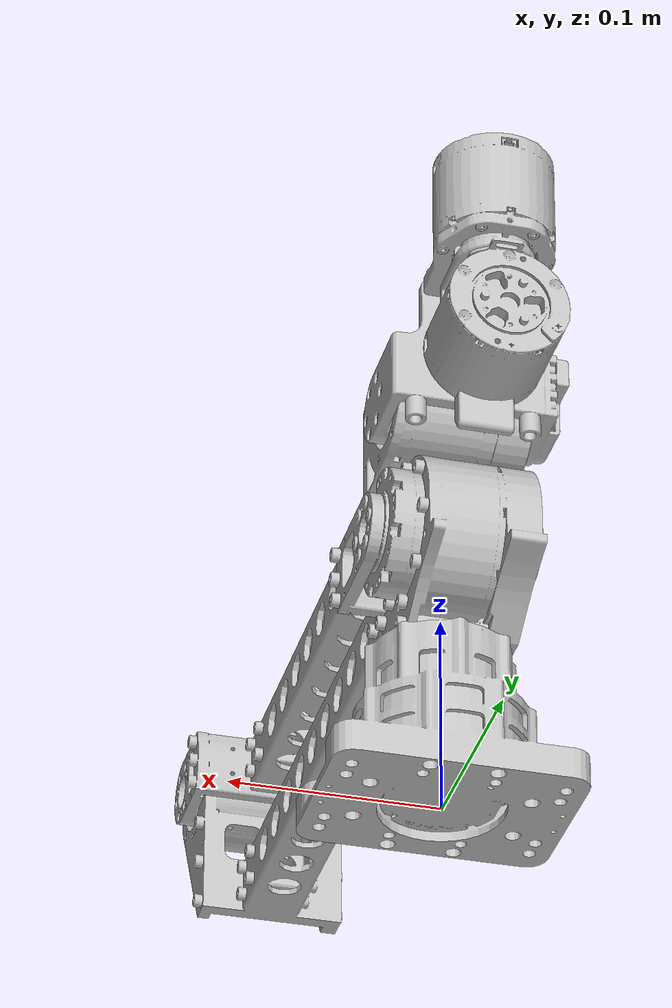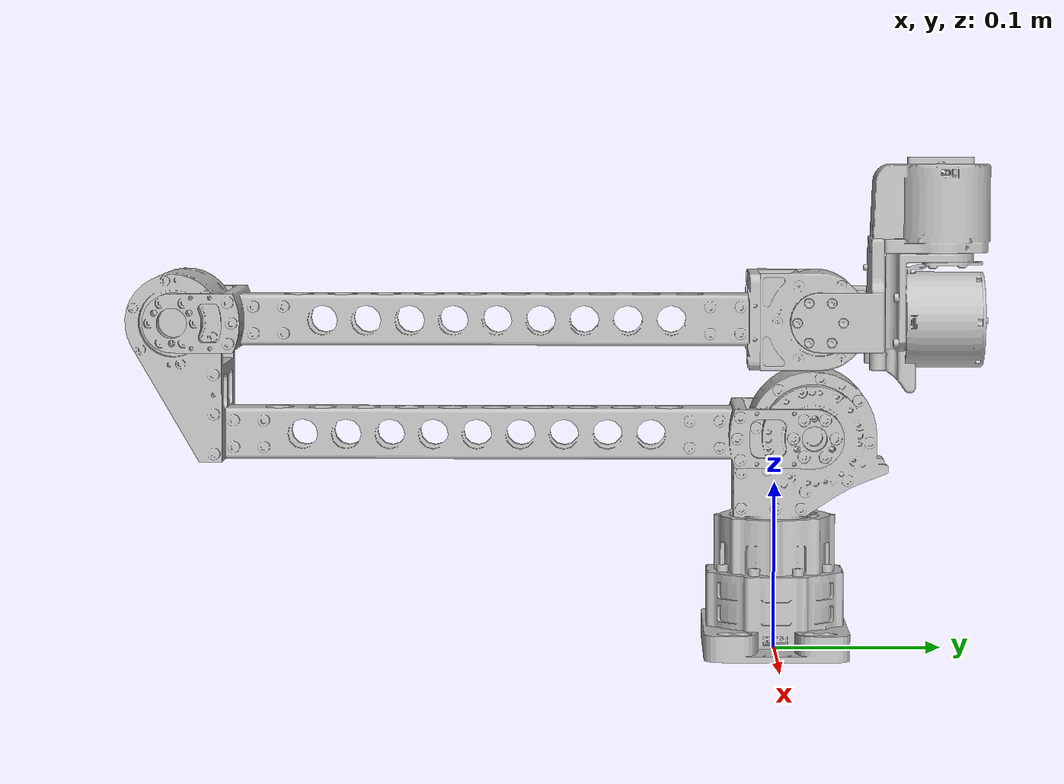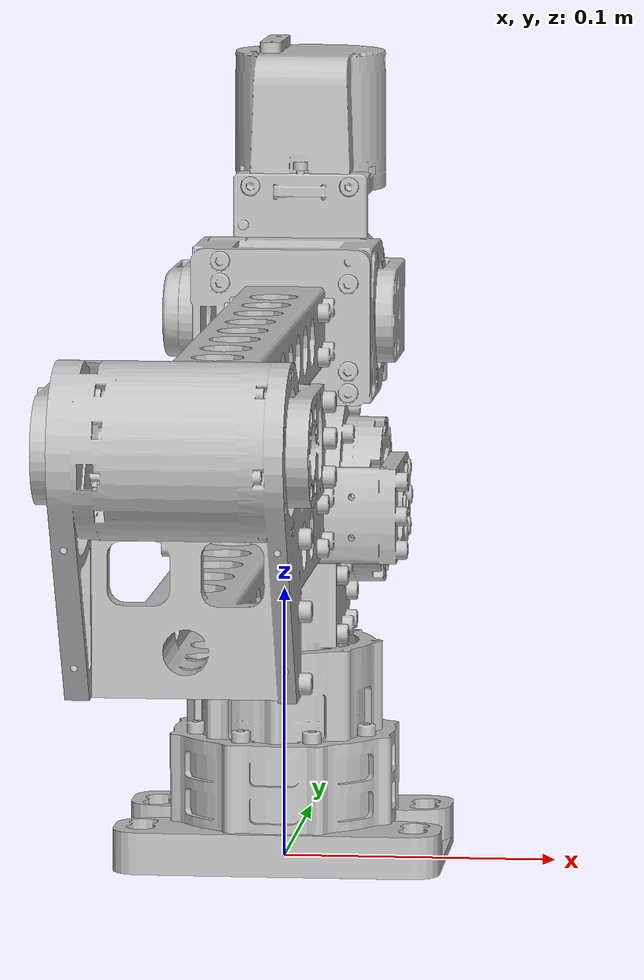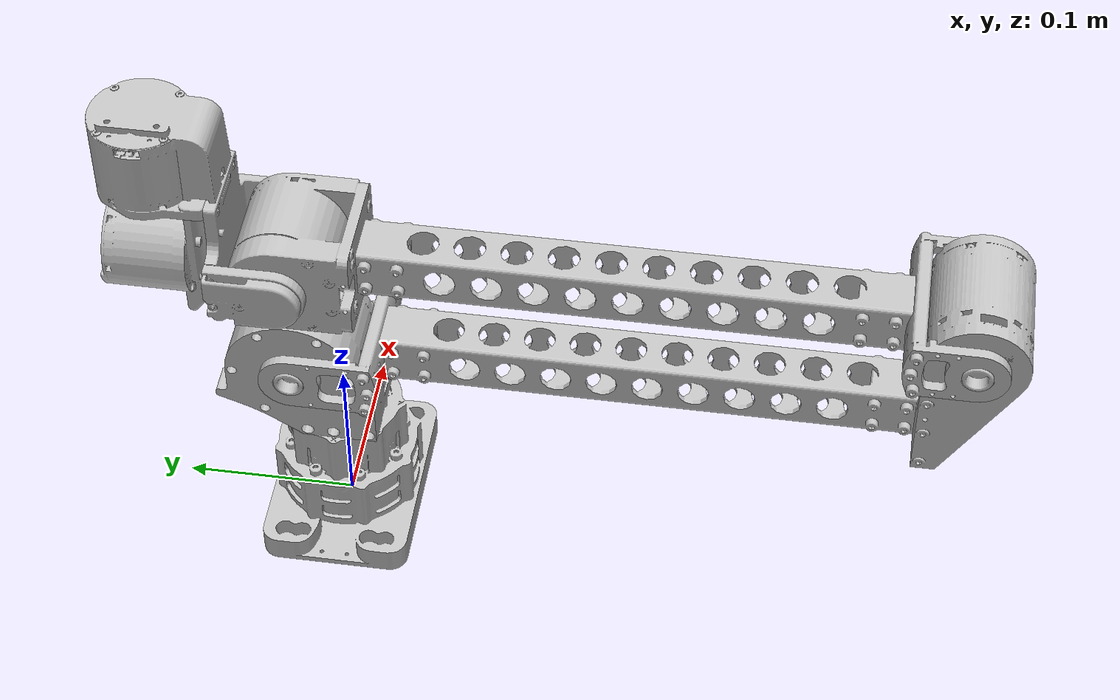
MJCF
<mujoco model="big_yam_arm_base">
  <compiler angle="radian" meshdir="../big_yam/assets"/>
  <size njmax="500" nconmax="100" />

  <asset>
    <mesh name="joint1" file="joint1.STL" />
    <mesh name="joint2_link" file="joint2_link.STL" />
    <mesh name="joint3_link" file="joint3_link.STL" />
    <mesh name="joint4_link" file="joint4_link.STL" />
    <mesh name="joint5_link" file="joint5_link.STL" />
    <mesh name="joint6_link" file="joint6_link.STL" />
  </asset>

  <worldbody>
    <geom type="mesh" rgba="0.752941 0.752941 0.752941 1" mesh="joint1" />
    <body name="joint2_link" pos="0 0 0.07735">
      <inertial pos="0.00262043 0.0186981 0.0476979" quat="0.477329 0.878707 -0.00124457 0.00543518" mass="0.844869" diaginertia="0.00057425 0.000428775 0.000395685" />
      <joint name="joint2" pos="0 0 0" axis="0 0 1" range="-2.61799 3.13" actuatorfrcrange="-10 10"/>
      <geom type="mesh" rgba="0.752941 0.752941 0.752941 1" mesh="joint2_link" />
      <body name="joint3_link" pos="0 0.021912 0.053202">
        <inertial pos="0.00386212 -0.27688 0.0327451" quat="0.711298 0.702816 -0.00721743 0.00719254" mass="0.87676" diaginertia="0.00182975 0.00177963 0.000341322" />
        <joint name="joint3" pos="0 0 0" axis="-1 0 0"  range="0 3.65" actuatorfrcrange="-10 10"/>
        <geom type="mesh" rgba="0.752941 0.752941 0.752941 1" mesh="joint3_link" />
        <body name="joint4_link" pos="0 -0.3787 0.068">
          <inertial pos="0.00320447 0.26687 -5.98855e-06" quat="0.707044 0.707124 0.00347899 -0.00727348" mass="0.849152" diaginertia="0.00176365 0.00172838 0.000252411" />
          <joint name="joint4" pos="0 0 0" axis="1 0 0" range="0 3.13" actuatorfrcrange="-10 10"/>
          <geom type="mesh" rgba="0.752941 0.752941 0.752941 1" mesh="joint4_link" />
          <body name="joint5_link" pos="0 0.38198 0">
            <inertial pos="-0.000204601 0.0595323 0.0500375" quat="0.174559 0.714795 -0.223159 0.639373" mass="0.465659" diaginertia="0.00021982 0.000163919 0.000126974" />
            <joint name="joint5" pos="0 0 0" axis="1 0 0" range="-1.65 1.65" actuatorfrcrange="-10 10"/>
            <geom type="mesh" rgba="0.752941 0.752941 0.752941 1" mesh="joint5_link" />
            <body name="joint6_link" pos="0 0.074 0.0455">
              <inertial pos="-4.72877e-05 -0.00118652 -0.0426116" quat="0.706401 -0.0368625 0.0458386 0.705363" mass="0.382514" diaginertia="0.000149214 9.5343e-05 8.35947e-05" />
              <joint name="joint6" pos="0 0 0" axis="0 0 1" range="-1.5708 1.5708" actuatorfrcrange="-10 10"/>
              <geom type="mesh" rgba="0.752941 0.752941 0.752941 1" mesh="joint6_link" />
              <!-- GRIPPER_PLACEHOLDER -->
            </body>
          </body>
        </body>
      </body>
    </body>
  </worldbody>
</mujoco>
